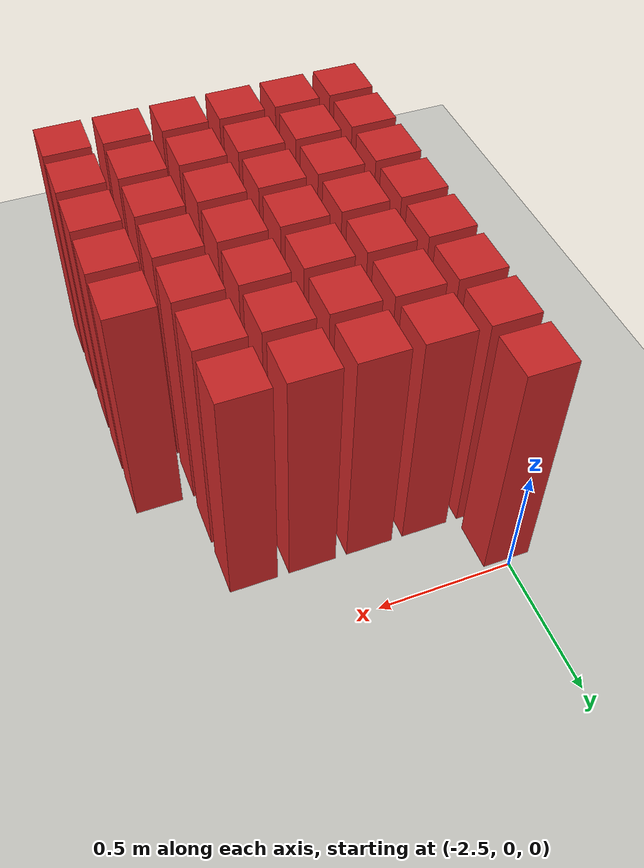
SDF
<sdf version="1.7">
 <world name="default">
  <model name="ground_plane">
   <static>1</static>
   <link name="link">
    <collision name="collision">
     <geometry><plane><normal>0 0 1</normal><size>100 100</size></plane></geometry>
     <surface>
      <contact><collide_bitmask>65535</collide_bitmask></contact>
      <friction><ode><mu>100</mu><mu2>50</mu2></ode></friction>
     </surface>
    </collision>
    <visual name="visual">
     <cast_shadows>0</cast_shadows>
     <geometry><plane><normal>0 0 1</normal><size>100 100</size></plane></geometry>
     <material>
      <script><uri>file://media/materials/scripts/gazebo.material</uri><name>Gazebo/CeilingTiled</name></script>
     </material>
    </visual>
   </link>
  </model>
  <model name="wall92">
   <link name="link">
    <pose>0 0 0.5 0 -0 0</pose>
    <inertial>
     <mass>0.5167</mass>
     <inertia>
      <ixx>0.000861167</ixx>
      <ixy>0</ixy>
      <ixz>0</ixz>
      <iyy>0.000861167</iyy>
      <iyz>0</iyz>
      <izz>0.000861167</izz>
     </inertia>
    </inertial>
    <collision name="collision">
     <geometry><box><size>0.21 0.21 1</size></box></geometry>
     <surface>
      <contact>
       <poissons_ratio>0.347</poissons_ratio>
       <elastic_modulus>8.8e+09</elastic_modulus>
       <ode><kp>100000</kp><kd>100</kd><max_vel>100</max_vel><min_depth>0.001</min_depth></ode>
      </contact>
      <friction>
       <torsional>
        <coefficient>1</coefficient>
        <use_patch_radius>0</use_patch_radius>
        <surface_radius>0.01</surface_radius>
       </torsional>
      </friction>
     </surface>
    </collision>
    <visual name="visual">
     <geometry><box><size>0.175 0.175 1</size></box></geometry>
     <material>
      <script><uri>file://media/materials/scripts/gazebo.material</uri><name>Gazebo/Red</name></script>
     </material>
    </visual>
   </link>
   <pose>-2.5 -1.63043 0 0 -0 0</pose>
  </model>
  <model name="wall93">
   <link name="link">
    <pose>0 0 0.5 0 -0 0</pose>
    <inertial>
     <mass>0.5167</mass>
     <inertia>
      <ixx>0.000861167</ixx>
      <ixy>0</ixy>
      <ixz>0</ixz>
      <iyy>0.000861167</iyy>
      <iyz>0</iyz>
      <izz>0.000861167</izz>
     </inertia>
    </inertial>
    <collision name="collision">
     <geometry><box><size>0.21 0.21 1</size></box></geometry>
     <surface>
      <contact>
       <poissons_ratio>0.347</poissons_ratio>
       <elastic_modulus>8.8e+09</elastic_modulus>
       <ode><kp>100000</kp><kd>100</kd><max_vel>100</max_vel><min_depth>0.001</min_depth></ode>
      </contact>
      <friction>
       <torsional>
        <coefficient>1</coefficient>
        <use_patch_radius>0</use_patch_radius>
        <surface_radius>0.01</surface_radius>
       </torsional>
      </friction>
     </surface>
    </collision>
    <visual name="visual">
     <geometry><box><size>0.175 0.175 1</size></box></geometry>
     <material>
      <script><uri>file://media/materials/scripts/gazebo.material</uri><name>Gazebo/Red</name></script>
     </material>
    </visual>
   </link>
   <pose>-2.28261 -1.63043 0 0 -0 0</pose>
  </model>
  <model name="wall94">
   <link name="link">
    <pose>0 0 0.5 0 -0 0</pose>
    <inertial>
     <mass>0.5167</mass>
     <inertia>
      <ixx>0.000861167</ixx>
      <ixy>0</ixy>
      <ixz>0</ixz>
      <iyy>0.000861167</iyy>
      <iyz>0</iyz>
      <izz>0.000861167</izz>
     </inertia>
    </inertial>
    <collision name="collision">
     <geometry><box><size>0.21 0.21 1</size></box></geometry>
     <surface>
      <contact>
       <poissons_ratio>0.347</poissons_ratio>
       <elastic_modulus>8.8e+09</elastic_modulus>
       <ode><kp>100000</kp><kd>100</kd><max_vel>100</max_vel><min_depth>0.001</min_depth></ode>
      </contact>
      <friction>
       <torsional>
        <coefficient>1</coefficient>
        <use_patch_radius>0</use_patch_radius>
        <surface_radius>0.01</surface_radius>
       </torsional>
      </friction>
     </surface>
    </collision>
    <visual name="visual">
     <geometry><box><size>0.175 0.175 1</size></box></geometry>
     <material>
      <script><uri>file://media/materials/scripts/gazebo.material</uri><name>Gazebo/Red</name></script>
     </material>
    </visual>
   </link>
   <pose>-2.06522 -1.63043 0 0 -0 0</pose>
  </model>
  <model name="wall95">
   <link name="link">
    <pose>0 0 0.5 0 -0 0</pose>
    <inertial>
     <mass>0.5167</mass>
     <inertia>
      <ixx>0.000861167</ixx>
      <ixy>0</ixy>
      <ixz>0</ixz>
      <iyy>0.000861167</iyy>
      <iyz>0</iyz>
      <izz>0.000861167</izz>
     </inertia>
    </inertial>
    <collision name="collision">
     <geometry><box><size>0.21 0.21 1</size></box></geometry>
     <surface>
      <contact>
       <poissons_ratio>0.347</poissons_ratio>
       <elastic_modulus>8.8e+09</elastic_modulus>
       <ode><kp>100000</kp><kd>100</kd><max_vel>100</max_vel><min_depth>0.001</min_depth></ode>
      </contact>
      <friction>
       <torsional>
        <coefficient>1</coefficient>
        <use_patch_radius>0</use_patch_radius>
        <surface_radius>0.01</surface_radius>
       </torsional>
      </friction>
     </surface>
    </collision>
    <visual name="visual">
     <geometry><box><size>0.175 0.175 1</size></box></geometry>
     <material>
      <script><uri>file://media/materials/scripts/gazebo.material</uri><name>Gazebo/Red</name></script>
     </material>
    </visual>
   </link>
   <pose>-1.84783 -1.63043 0 0 -0 0</pose>
  </model>
  <model name="wall96">
   <link name="link">
    <pose>0 0 0.5 0 -0 0</pose>
    <inertial>
     <mass>0.5167</mass>
     <inertia>
      <ixx>0.000861167</ixx>
      <ixy>0</ixy>
      <ixz>0</ixz>
      <iyy>0.000861167</iyy>
      <iyz>0</iyz>
      <izz>0.000861167</izz>
     </inertia>
    </inertial>
    <collision name="collision">
     <geometry><box><size>0.21 0.21 1</size></box></geometry>
     <surface>
      <contact>
       <poissons_ratio>0.347</poissons_ratio>
       <elastic_modulus>8.8e+09</elastic_modulus>
       <ode><kp>100000</kp><kd>100</kd><max_vel>100</max_vel><min_depth>0.001</min_depth></ode>
      </contact>
      <friction>
       <torsional>
        <coefficient>1</coefficient>
        <use_patch_radius>0</use_patch_radius>
        <surface_radius>0.01</surface_radius>
       </torsional>
      </friction>
     </surface>
    </collision>
    <visual name="visual">
     <geometry><box><size>0.175 0.175 1</size></box></geometry>
     <material>
      <script><uri>file://media/materials/scripts/gazebo.material</uri><name>Gazebo/Red</name></script>
     </material>
    </visual>
   </link>
   <pose>-1.63043 -1.63043 0 0 -0 0</pose>
  </model>
  <model name="wall97">
   <link name="link">
    <pose>0 0 0.5 0 -0 0</pose>
    <inertial>
     <mass>0.5167</mass>
     <inertia>
      <ixx>0.000861167</ixx>
      <ixy>0</ixy>
      <ixz>0</ixz>
      <iyy>0.000861167</iyy>
      <iyz>0</iyz>
      <izz>0.000861167</izz>
     </inertia>
    </inertial>
    <collision name="collision">
     <geometry><box><size>0.21 0.21 1</size></box></geometry>
     <surface>
      <contact>
       <poissons_ratio>0.347</poissons_ratio>
       <elastic_modulus>8.8e+09</elastic_modulus>
       <ode><kp>100000</kp><kd>100</kd><max_vel>100</max_vel><min_depth>0.001</min_depth></ode>
      </contact>
      <friction>
       <torsional>
        <coefficient>1</coefficient>
        <use_patch_radius>0</use_patch_radius>
        <surface_radius>0.01</surface_radius>
       </torsional>
      </friction>
     </surface>
    </collision>
    <visual name="visual">
     <geometry><box><size>0.175 0.175 1</size></box></geometry>
     <material>
      <script><uri>file://media/materials/scripts/gazebo.material</uri><name>Gazebo/Red</name></script>
     </material>
    </visual>
   </link>
   <pose>-1.41304 -1.63043 0 0 -0 0</pose>
  </model>
  <model name="wall115">
   <link name="link">
    <pose>0 0 0.5 0 -0 0</pose>
    <inertial>
     <mass>0.5167</mass>
     <inertia>
      <ixx>0.000861167</ixx>
      <ixy>0</ixy>
      <ixz>0</ixz>
      <iyy>0.000861167</iyy>
      <iyz>0</iyz>
      <izz>0.000861167</izz>
     </inertia>
    </inertial>
    <collision name="collision">
     <geometry><box><size>0.21 0.21 1</size></box></geometry>
     <surface>
      <contact>
       <poissons_ratio>0.347</poissons_ratio>
       <elastic_modulus>8.8e+09</elastic_modulus>
       <ode><kp>100000</kp><kd>100</kd><max_vel>100</max_vel><min_depth>0.001</min_depth></ode>
      </contact>
      <friction>
       <torsional>
        <coefficient>1</coefficient>
        <use_patch_radius>0</use_patch_radius>
        <surface_radius>0.01</surface_radius>
       </torsional>
      </friction>
     </surface>
    </collision>
    <visual name="visual">
     <geometry><box><size>0.175 0.175 1</size></box></geometry>
     <material>
      <script><uri>file://media/materials/scripts/gazebo.material</uri><name>Gazebo/Red</name></script>
     </material>
    </visual>
   </link>
   <pose>-2.5 -1.41304 0 0 -0 0</pose>
  </model>
  <model name="wall116">
   <link name="link">
    <pose>0 0 0.5 0 -0 0</pose>
    <inertial>
     <mass>0.5167</mass>
     <inertia>
      <ixx>0.000861167</ixx>
      <ixy>0</ixy>
      <ixz>0</ixz>
      <iyy>0.000861167</iyy>
      <iyz>0</iyz>
      <izz>0.000861167</izz>
     </inertia>
    </inertial>
    <collision name="collision">
     <geometry><box><size>0.21 0.21 1</size></box></geometry>
     <surface>
      <contact>
       <poissons_ratio>0.347</poissons_ratio>
       <elastic_modulus>8.8e+09</elastic_modulus>
       <ode><kp>100000</kp><kd>100</kd><max_vel>100</max_vel><min_depth>0.001</min_depth></ode>
      </contact>
      <friction>
       <torsional>
        <coefficient>1</coefficient>
        <use_patch_radius>0</use_patch_radius>
        <surface_radius>0.01</surface_radius>
       </torsional>
      </friction>
     </surface>
    </collision>
    <visual name="visual">
     <geometry><box><size>0.175 0.175 1</size></box></geometry>
     <material>
      <script><uri>file://media/materials/scripts/gazebo.material</uri><name>Gazebo/Red</name></script>
     </material>
    </visual>
   </link>
   <pose>-2.28261 -1.41304 0 0 -0 0</pose>
  </model>
  <model name="wall117">
   <link name="link">
    <pose>0 0 0.5 0 -0 0</pose>
    <inertial>
     <mass>0.5167</mass>
     <inertia>
      <ixx>0.000861167</ixx>
      <ixy>0</ixy>
      <ixz>0</ixz>
      <iyy>0.000861167</iyy>
      <iyz>0</iyz>
      <izz>0.000861167</izz>
     </inertia>
    </inertial>
    <collision name="collision">
     <geometry><box><size>0.21 0.21 1</size></box></geometry>
     <surface>
      <contact>
       <poissons_ratio>0.347</poissons_ratio>
       <elastic_modulus>8.8e+09</elastic_modulus>
       <ode><kp>100000</kp><kd>100</kd><max_vel>100</max_vel><min_depth>0.001</min_depth></ode>
      </contact>
      <friction>
       <torsional>
        <coefficient>1</coefficient>
        <use_patch_radius>0</use_patch_radius>
        <surface_radius>0.01</surface_radius>
       </torsional>
      </friction>
     </surface>
    </collision>
    <visual name="visual">
     <geometry><box><size>0.175 0.175 1</size></box></geometry>
     <material>
      <script><uri>file://media/materials/scripts/gazebo.material</uri><name>Gazebo/Red</name></script>
     </material>
    </visual>
   </link>
   <pose>-2.06522 -1.41304 0 0 -0 0</pose>
  </model>
  <model name="wall118">
   <link name="link">
    <pose>0 0 0.5 0 -0 0</pose>
    <inertial>
     <mass>0.5167</mass>
     <inertia>
      <ixx>0.000861167</ixx>
      <ixy>0</ixy>
      <ixz>0</ixz>
      <iyy>0.000861167</iyy>
      <iyz>0</iyz>
      <izz>0.000861167</izz>
     </inertia>
    </inertial>
    <collision name="collision">
     <geometry><box><size>0.21 0.21 1</size></box></geometry>
     <surface>
      <contact>
       <poissons_ratio>0.347</poissons_ratio>
       <elastic_modulus>8.8e+09</elastic_modulus>
       <ode><kp>100000</kp><kd>100</kd><max_vel>100</max_vel><min_depth>0.001</min_depth></ode>
      </contact>
      <friction>
       <torsional>
        <coefficient>1</coefficient>
        <use_patch_radius>0</use_patch_radius>
        <surface_radius>0.01</surface_radius>
       </torsional>
      </friction>
     </surface>
    </collision>
    <visual name="visual">
     <geometry><box><size>0.175 0.175 1</size></box></geometry>
     <material>
      <script><uri>file://media/materials/scripts/gazebo.material</uri><name>Gazebo/Red</name></script>
     </material>
    </visual>
   </link>
   <pose>-1.84783 -1.41304 0 0 -0 0</pose>
  </model>
  <model name="wall119">
   <link name="link">
    <pose>0 0 0.5 0 -0 0</pose>
    <inertial>
     <mass>0.5167</mass>
     <inertia>
      <ixx>0.000861167</ixx>
      <ixy>0</ixy>
      <ixz>0</ixz>
      <iyy>0.000861167</iyy>
      <iyz>0</iyz>
      <izz>0.000861167</izz>
     </inertia>
    </inertial>
    <collision name="collision">
     <geometry><box><size>0.21 0.21 1</size></box></geometry>
     <surface>
      <contact>
       <poissons_ratio>0.347</poissons_ratio>
       <elastic_modulus>8.8e+09</elastic_modulus>
       <ode><kp>100000</kp><kd>100</kd><max_vel>100</max_vel><min_depth>0.001</min_depth></ode>
      </contact>
      <friction>
       <torsional>
        <coefficient>1</coefficient>
        <use_patch_radius>0</use_patch_radius>
        <surface_radius>0.01</surface_radius>
       </torsional>
      </friction>
     </surface>
    </collision>
    <visual name="visual">
     <geometry><box><size>0.175 0.175 1</size></box></geometry>
     <material>
      <script><uri>file://media/materials/scripts/gazebo.material</uri><name>Gazebo/Red</name></script>
     </material>
    </visual>
   </link>
   <pose>-1.63043 -1.41304 0 0 -0 0</pose>
  </model>
  <model name="wall120">
   <link name="link">
    <pose>0 0 0.5 0 -0 0</pose>
    <inertial>
     <mass>0.5167</mass>
     <inertia>
      <ixx>0.000861167</ixx>
      <ixy>0</ixy>
      <ixz>0</ixz>
      <iyy>0.000861167</iyy>
      <iyz>0</iyz>
      <izz>0.000861167</izz>
     </inertia>
    </inertial>
    <collision name="collision">
     <geometry><box><size>0.21 0.21 1</size></box></geometry>
     <surface>
      <contact>
       <poissons_ratio>0.347</poissons_ratio>
       <elastic_modulus>8.8e+09</elastic_modulus>
       <ode><kp>100000</kp><kd>100</kd><max_vel>100</max_vel><min_depth>0.001</min_depth></ode>
      </contact>
      <friction>
       <torsional>
        <coefficient>1</coefficient>
        <use_patch_radius>0</use_patch_radius>
        <surface_radius>0.01</surface_radius>
       </torsional>
      </friction>
     </surface>
    </collision>
    <visual name="visual">
     <geometry><box><size>0.175 0.175 1</size></box></geometry>
     <material>
      <script><uri>file://media/materials/scripts/gazebo.material</uri><name>Gazebo/Red</name></script>
     </material>
    </visual>
   </link>
   <pose>-1.41304 -1.41304 0 0 -0 0</pose>
  </model>
  <model name="wall138">
   <link name="link">
    <pose>0 0 0.5 0 -0 0</pose>
    <inertial>
     <mass>0.5167</mass>
     <inertia>
      <ixx>0.000861167</ixx>
      <ixy>0</ixy>
      <ixz>0</ixz>
      <iyy>0.000861167</iyy>
      <iyz>0</iyz>
      <izz>0.000861167</izz>
     </inertia>
    </inertial>
    <collision name="collision">
     <geometry><box><size>0.21 0.21 1</size></box></geometry>
     <surface>
      <contact>
       <poissons_ratio>0.347</poissons_ratio>
       <elastic_modulus>8.8e+09</elastic_modulus>
       <ode><kp>100000</kp><kd>100</kd><max_vel>100</max_vel><min_depth>0.001</min_depth></ode>
      </contact>
      <friction>
       <torsional>
        <coefficient>1</coefficient>
        <use_patch_radius>0</use_patch_radius>
        <surface_radius>0.01</surface_radius>
       </torsional>
      </friction>
     </surface>
    </collision>
    <visual name="visual">
     <geometry><box><size>0.175 0.175 1</size></box></geometry>
     <material>
      <script><uri>file://media/materials/scripts/gazebo.material</uri><name>Gazebo/Red</name></script>
     </material>
    </visual>
   </link>
   <pose>-2.5 -1.19565 0 0 -0 0</pose>
  </model>
  <model name="wall139">
   <link name="link">
    <pose>0 0 0.5 0 -0 0</pose>
    <inertial>
     <mass>0.5167</mass>
     <inertia>
      <ixx>0.000861167</ixx>
      <ixy>0</ixy>
      <ixz>0</ixz>
      <iyy>0.000861167</iyy>
      <iyz>0</iyz>
      <izz>0.000861167</izz>
     </inertia>
    </inertial>
    <collision name="collision">
     <geometry><box><size>0.21 0.21 1</size></box></geometry>
     <surface>
      <contact>
       <poissons_ratio>0.347</poissons_ratio>
       <elastic_modulus>8.8e+09</elastic_modulus>
       <ode><kp>100000</kp><kd>100</kd><max_vel>100</max_vel><min_depth>0.001</min_depth></ode>
      </contact>
      <friction>
       <torsional>
        <coefficient>1</coefficient>
        <use_patch_radius>0</use_patch_radius>
        <surface_radius>0.01</surface_radius>
       </torsional>
      </friction>
     </surface>
    </collision>
    <visual name="visual">
     <geometry><box><size>0.175 0.175 1</size></box></geometry>
     <material>
      <script><uri>file://media/materials/scripts/gazebo.material</uri><name>Gazebo/Red</name></script>
     </material>
    </visual>
   </link>
   <pose>-2.28261 -1.19565 0 0 -0 0</pose>
  </model>
  <model name="wall140">
   <link name="link">
    <pose>0 0 0.5 0 -0 0</pose>
    <inertial>
     <mass>0.5167</mass>
     <inertia>
      <ixx>0.000861167</ixx>
      <ixy>0</ixy>
      <ixz>0</ixz>
      <iyy>0.000861167</iyy>
      <iyz>0</iyz>
      <izz>0.000861167</izz>
     </inertia>
    </inertial>
    <collision name="collision">
     <geometry><box><size>0.21 0.21 1</size></box></geometry>
     <surface>
      <contact>
       <poissons_ratio>0.347</poissons_ratio>
       <elastic_modulus>8.8e+09</elastic_modulus>
       <ode><kp>100000</kp><kd>100</kd><max_vel>100</max_vel><min_depth>0.001</min_depth></ode>
      </contact>
      <friction>
       <torsional>
        <coefficient>1</coefficient>
        <use_patch_radius>0</use_patch_radius>
        <surface_radius>0.01</surface_radius>
       </torsional>
      </friction>
     </surface>
    </collision>
    <visual name="visual">
     <geometry><box><size>0.175 0.175 1</size></box></geometry>
     <material>
      <script><uri>file://media/materials/scripts/gazebo.material</uri><name>Gazebo/Red</name></script>
     </material>
    </visual>
   </link>
   <pose>-2.06522 -1.19565 0 0 -0 0</pose>
  </model>
  <model name="wall141">
   <link name="link">
    <pose>0 0 0.5 0 -0 0</pose>
    <inertial>
     <mass>0.5167</mass>
     <inertia>
      <ixx>0.000861167</ixx>
      <ixy>0</ixy>
      <ixz>0</ixz>
      <iyy>0.000861167</iyy>
      <iyz>0</iyz>
      <izz>0.000861167</izz>
     </inertia>
    </inertial>
    <collision name="collision">
     <geometry><box><size>0.21 0.21 1</size></box></geometry>
     <surface>
      <contact>
       <poissons_ratio>0.347</poissons_ratio>
       <elastic_modulus>8.8e+09</elastic_modulus>
       <ode><kp>100000</kp><kd>100</kd><max_vel>100</max_vel><min_depth>0.001</min_depth></ode>
      </contact>
      <friction>
       <torsional>
        <coefficient>1</coefficient>
        <use_patch_radius>0</use_patch_radius>
        <surface_radius>0.01</surface_radius>
       </torsional>
      </friction>
     </surface>
    </collision>
    <visual name="visual">
     <geometry><box><size>0.175 0.175 1</size></box></geometry>
     <material>
      <script><uri>file://media/materials/scripts/gazebo.material</uri><name>Gazebo/Red</name></script>
     </material>
    </visual>
   </link>
   <pose>-1.84783 -1.19565 0 0 -0 0</pose>
  </model>
  <model name="wall142">
   <link name="link">
    <pose>0 0 0.5 0 -0 0</pose>
    <inertial>
     <mass>0.5167</mass>
     <inertia>
      <ixx>0.000861167</ixx>
      <ixy>0</ixy>
      <ixz>0</ixz>
      <iyy>0.000861167</iyy>
      <iyz>0</iyz>
      <izz>0.000861167</izz>
     </inertia>
    </inertial>
    <collision name="collision">
     <geometry><box><size>0.21 0.21 1</size></box></geometry>
     <surface>
      <contact>
       <poissons_ratio>0.347</poissons_ratio>
       <elastic_modulus>8.8e+09</elastic_modulus>
       <ode><kp>100000</kp><kd>100</kd><max_vel>100</max_vel><min_depth>0.001</min_depth></ode>
      </contact>
      <friction>
       <torsional>
        <coefficient>1</coefficient>
        <use_patch_radius>0</use_patch_radius>
        <surface_radius>0.01</surface_radius>
       </torsional>
      </friction>
     </surface>
    </collision>
    <visual name="visual">
     <geometry><box><size>0.175 0.175 1</size></box></geometry>
     <material>
      <script><uri>file://media/materials/scripts/gazebo.material</uri><name>Gazebo/Red</name></script>
     </material>
    </visual>
   </link>
   <pose>-1.63043 -1.19565 0 0 -0 0</pose>
  </model>
  <model name="wall143">
   <link name="link">
    <pose>0 0 0.5 0 -0 0</pose>
    <inertial>
     <mass>0.5167</mass>
     <inertia>
      <ixx>0.000861167</ixx>
      <ixy>0</ixy>
      <ixz>0</ixz>
      <iyy>0.000861167</iyy>
      <iyz>0</iyz>
      <izz>0.000861167</izz>
     </inertia>
    </inertial>
    <collision name="collision">
     <geometry><box><size>0.21 0.21 1</size></box></geometry>
     <surface>
      <contact>
       <poissons_ratio>0.347</poissons_ratio>
       <elastic_modulus>8.8e+09</elastic_modulus>
       <ode><kp>100000</kp><kd>100</kd><max_vel>100</max_vel><min_depth>0.001</min_depth></ode>
      </contact>
      <friction>
       <torsional>
        <coefficient>1</coefficient>
        <use_patch_radius>0</use_patch_radius>
        <surface_radius>0.01</surface_radius>
       </torsional>
      </friction>
     </surface>
    </collision>
    <visual name="visual">
     <geometry><box><size>0.175 0.175 1</size></box></geometry>
     <material>
      <script><uri>file://media/materials/scripts/gazebo.material</uri><name>Gazebo/Red</name></script>
     </material>
    </visual>
   </link>
   <pose>-1.41304 -1.19565 0 0 -0 0</pose>
  </model>
  <model name="wall161">
   <link name="link">
    <pose>0 0 0.5 0 -0 0</pose>
    <inertial>
     <mass>0.5167</mass>
     <inertia>
      <ixx>0.000861167</ixx>
      <ixy>0</ixy>
      <ixz>0</ixz>
      <iyy>0.000861167</iyy>
      <iyz>0</iyz>
      <izz>0.000861167</izz>
     </inertia>
    </inertial>
    <collision name="collision">
     <geometry><box><size>0.21 0.21 1</size></box></geometry>
     <surface>
      <contact>
       <poissons_ratio>0.347</poissons_ratio>
       <elastic_modulus>8.8e+09</elastic_modulus>
       <ode><kp>100000</kp><kd>100</kd><max_vel>100</max_vel><min_depth>0.001</min_depth></ode>
      </contact>
      <friction>
       <torsional>
        <coefficient>1</coefficient>
        <use_patch_radius>0</use_patch_radius>
        <surface_radius>0.01</surface_radius>
       </torsional>
      </friction>
     </surface>
    </collision>
    <visual name="visual">
     <geometry><box><size>0.175 0.175 1</size></box></geometry>
     <material>
      <script><uri>file://media/materials/scripts/gazebo.material</uri><name>Gazebo/Red</name></script>
     </material>
    </visual>
   </link>
   <pose>-2.5 -0.978261 0 0 -0 0</pose>
  </model>
  <model name="wall162">
   <link name="link">
    <pose>0 0 0.5 0 -0 0</pose>
    <inertial>
     <mass>0.5167</mass>
     <inertia>
      <ixx>0.000861167</ixx>
      <ixy>0</ixy>
      <ixz>0</ixz>
      <iyy>0.000861167</iyy>
      <iyz>0</iyz>
      <izz>0.000861167</izz>
     </inertia>
    </inertial>
    <collision name="collision">
     <geometry><box><size>0.21 0.21 1</size></box></geometry>
     <surface>
      <contact>
       <poissons_ratio>0.347</poissons_ratio>
       <elastic_modulus>8.8e+09</elastic_modulus>
       <ode><kp>100000</kp><kd>100</kd><max_vel>100</max_vel><min_depth>0.001</min_depth></ode>
      </contact>
      <friction>
       <torsional>
        <coefficient>1</coefficient>
        <use_patch_radius>0</use_patch_radius>
        <surface_radius>0.01</surface_radius>
       </torsional>
      </friction>
     </surface>
    </collision>
    <visual name="visual">
     <geometry><box><size>0.175 0.175 1</size></box></geometry>
     <material>
      <script><uri>file://media/materials/scripts/gazebo.material</uri><name>Gazebo/Red</name></script>
     </material>
    </visual>
   </link>
   <pose>-2.28261 -0.978261 0 0 -0 0</pose>
  </model>
  <model name="wall163">
   <link name="link">
    <pose>0 0 0.5 0 -0 0</pose>
    <inertial>
     <mass>0.5167</mass>
     <inertia>
      <ixx>0.000861167</ixx>
      <ixy>0</ixy>
      <ixz>0</ixz>
      <iyy>0.000861167</iyy>
      <iyz>0</iyz>
      <izz>0.000861167</izz>
     </inertia>
    </inertial>
    <collision name="collision">
     <geometry><box><size>0.21 0.21 1</size></box></geometry>
     <surface>
      <contact>
       <poissons_ratio>0.347</poissons_ratio>
       <elastic_modulus>8.8e+09</elastic_modulus>
       <ode><kp>100000</kp><kd>100</kd><max_vel>100</max_vel><min_depth>0.001</min_depth></ode>
      </contact>
      <friction>
       <torsional>
        <coefficient>1</coefficient>
        <use_patch_radius>0</use_patch_radius>
        <surface_radius>0.01</surface_radius>
       </torsional>
      </friction>
     </surface>
    </collision>
    <visual name="visual">
     <geometry><box><size>0.175 0.175 1</size></box></geometry>
     <material>
      <script><uri>file://media/materials/scripts/gazebo.material</uri><name>Gazebo/Red</name></script>
     </material>
    </visual>
   </link>
   <pose>-2.06522 -0.978261 0 0 -0 0</pose>
  </model>
  <model name="wall164">
   <link name="link">
    <pose>0 0 0.5 0 -0 0</pose>
    <inertial>
     <mass>0.5167</mass>
     <inertia>
      <ixx>0.000861167</ixx>
      <ixy>0</ixy>
      <ixz>0</ixz>
      <iyy>0.000861167</iyy>
      <iyz>0</iyz>
      <izz>0.000861167</izz>
     </inertia>
    </inertial>
    <collision name="collision">
     <geometry><box><size>0.21 0.21 1</size></box></geometry>
     <surface>
      <contact>
       <poissons_ratio>0.347</poissons_ratio>
       <elastic_modulus>8.8e+09</elastic_modulus>
       <ode><kp>100000</kp><kd>100</kd><max_vel>100</max_vel><min_depth>0.001</min_depth></ode>
      </contact>
      <friction>
       <torsional>
        <coefficient>1</coefficient>
        <use_patch_radius>0</use_patch_radius>
        <surface_radius>0.01</surface_radius>
       </torsional>
      </friction>
     </surface>
    </collision>
    <visual name="visual">
     <geometry><box><size>0.175 0.175 1</size></box></geometry>
     <material>
      <script><uri>file://media/materials/scripts/gazebo.material</uri><name>Gazebo/Red</name></script>
     </material>
    </visual>
   </link>
   <pose>-1.84783 -0.978261 0 0 -0 0</pose>
  </model>
  <model name="wall165">
   <link name="link">
    <pose>0 0 0.5 0 -0 0</pose>
    <inertial>
     <mass>0.5167</mass>
     <inertia>
      <ixx>0.000861167</ixx>
      <ixy>0</ixy>
      <ixz>0</ixz>
      <iyy>0.000861167</iyy>
      <iyz>0</iyz>
      <izz>0.000861167</izz>
     </inertia>
    </inertial>
    <collision name="collision">
     <geometry><box><size>0.21 0.21 1</size></box></geometry>
     <surface>
      <contact>
       <poissons_ratio>0.347</poissons_ratio>
       <elastic_modulus>8.8e+09</elastic_modulus>
       <ode><kp>100000</kp><kd>100</kd><max_vel>100</max_vel><min_depth>0.001</min_depth></ode>
      </contact>
      <friction>
       <torsional>
        <coefficient>1</coefficient>
        <use_patch_radius>0</use_patch_radius>
        <surface_radius>0.01</surface_radius>
       </torsional>
      </friction>
     </surface>
    </collision>
    <visual name="visual">
     <geometry><box><size>0.175 0.175 1</size></box></geometry>
     <material>
      <script><uri>file://media/materials/scripts/gazebo.material</uri><name>Gazebo/Red</name></script>
     </material>
    </visual>
   </link>
   <pose>-1.63043 -0.978261 0 0 -0 0</pose>
  </model>
  <model name="wall166">
   <link name="link">
    <pose>0 0 0.5 0 -0 0</pose>
    <inertial>
     <mass>0.5167</mass>
     <inertia>
      <ixx>0.000861167</ixx>
      <ixy>0</ixy>
      <ixz>0</ixz>
      <iyy>0.000861167</iyy>
      <iyz>0</iyz>
      <izz>0.000861167</izz>
     </inertia>
    </inertial>
    <collision name="collision">
     <geometry><box><size>0.21 0.21 1</size></box></geometry>
     <surface>
      <contact>
       <poissons_ratio>0.347</poissons_ratio>
       <elastic_modulus>8.8e+09</elastic_modulus>
       <ode><kp>100000</kp><kd>100</kd><max_vel>100</max_vel><min_depth>0.001</min_depth></ode>
      </contact>
      <friction>
       <torsional>
        <coefficient>1</coefficient>
        <use_patch_radius>0</use_patch_radius>
        <surface_radius>0.01</surface_radius>
       </torsional>
      </friction>
     </surface>
    </collision>
    <visual name="visual">
     <geometry><box><size>0.175 0.175 1</size></box></geometry>
     <material>
      <script><uri>file://media/materials/scripts/gazebo.material</uri><name>Gazebo/Red</name></script>
     </material>
    </visual>
   </link>
   <pose>-1.41304 -0.978261 0 0 -0 0</pose>
  </model>
  <model name="wall184">
   <link name="link">
    <pose>0 0 0.5 0 -0 0</pose>
    <inertial>
     <mass>0.5167</mass>
     <inertia>
      <ixx>0.000861167</ixx>
      <ixy>0</ixy>
      <ixz>0</ixz>
      <iyy>0.000861167</iyy>
      <iyz>0</iyz>
      <izz>0.000861167</izz>
     </inertia>
    </inertial>
    <collision name="collision">
     <geometry><box><size>0.21 0.21 1</size></box></geometry>
     <surface>
      <contact>
       <poissons_ratio>0.347</poissons_ratio>
       <elastic_modulus>8.8e+09</elastic_modulus>
       <ode><kp>100000</kp><kd>100</kd><max_vel>100</max_vel><min_depth>0.001</min_depth></ode>
      </contact>
      <friction>
       <torsional>
        <coefficient>1</coefficient>
        <use_patch_radius>0</use_patch_radius>
        <surface_radius>0.01</surface_radius>
       </torsional>
      </friction>
     </surface>
    </collision>
    <visual name="visual">
     <geometry><box><size>0.175 0.175 1</size></box></geometry>
     <material>
      <script><uri>file://media/materials/scripts/gazebo.material</uri><name>Gazebo/Red</name></script>
     </material>
    </visual>
   </link>
   <pose>-2.5 -0.76087 0 0 -0 0</pose>
  </model>
  <model name="wall185">
   <link name="link">
    <pose>0 0 0.5 0 -0 0</pose>
    <inertial>
     <mass>0.5167</mass>
     <inertia>
      <ixx>0.000861167</ixx>
      <ixy>0</ixy>
      <ixz>0</ixz>
      <iyy>0.000861167</iyy>
      <iyz>0</iyz>
      <izz>0.000861167</izz>
     </inertia>
    </inertial>
    <collision name="collision">
     <geometry><box><size>0.21 0.21 1</size></box></geometry>
     <surface>
      <contact>
       <poissons_ratio>0.347</poissons_ratio>
       <elastic_modulus>8.8e+09</elastic_modulus>
       <ode><kp>100000</kp><kd>100</kd><max_vel>100</max_vel><min_depth>0.001</min_depth></ode>
      </contact>
      <friction>
       <torsional>
        <coefficient>1</coefficient>
        <use_patch_radius>0</use_patch_radius>
        <surface_radius>0.01</surface_radius>
       </torsional>
      </friction>
     </surface>
    </collision>
    <visual name="visual">
     <geometry><box><size>0.175 0.175 1</size></box></geometry>
     <material>
      <script><uri>file://media/materials/scripts/gazebo.material</uri><name>Gazebo/Red</name></script>
     </material>
    </visual>
   </link>
   <pose>-2.28261 -0.76087 0 0 -0 0</pose>
  </model>
  <model name="wall186">
   <link name="link">
    <pose>0 0 0.5 0 -0 0</pose>
    <inertial>
     <mass>0.5167</mass>
     <inertia>
      <ixx>0.000861167</ixx>
      <ixy>0</ixy>
      <ixz>0</ixz>
      <iyy>0.000861167</iyy>
      <iyz>0</iyz>
      <izz>0.000861167</izz>
     </inertia>
    </inertial>
    <collision name="collision">
     <geometry><box><size>0.21 0.21 1</size></box></geometry>
     <surface>
      <contact>
       <poissons_ratio>0.347</poissons_ratio>
       <elastic_modulus>8.8e+09</elastic_modulus>
       <ode><kp>100000</kp><kd>100</kd><max_vel>100</max_vel><min_depth>0.001</min_depth></ode>
      </contact>
      <friction>
       <torsional>
        <coefficient>1</coefficient>
        <use_patch_radius>0</use_patch_radius>
        <surface_radius>0.01</surface_radius>
       </torsional>
      </friction>
     </surface>
    </collision>
    <visual name="visual">
     <geometry><box><size>0.175 0.175 1</size></box></geometry>
     <material>
      <script><uri>file://media/materials/scripts/gazebo.material</uri><name>Gazebo/Red</name></script>
     </material>
    </visual>
   </link>
   <pose>-2.06522 -0.76087 0 0 -0 0</pose>
  </model>
  <model name="wall187">
   <link name="link">
    <pose>0 0 0.5 0 -0 0</pose>
    <inertial>
     <mass>0.5167</mass>
     <inertia>
      <ixx>0.000861167</ixx>
      <ixy>0</ixy>
      <ixz>0</ixz>
      <iyy>0.000861167</iyy>
      <iyz>0</iyz>
      <izz>0.000861167</izz>
     </inertia>
    </inertial>
    <collision name="collision">
     <geometry><box><size>0.21 0.21 1</size></box></geometry>
     <surface>
      <contact>
       <poissons_ratio>0.347</poissons_ratio>
       <elastic_modulus>8.8e+09</elastic_modulus>
       <ode><kp>100000</kp><kd>100</kd><max_vel>100</max_vel><min_depth>0.001</min_depth></ode>
      </contact>
      <friction>
       <torsional>
        <coefficient>1</coefficient>
        <use_patch_radius>0</use_patch_radius>
        <surface_radius>0.01</surface_radius>
       </torsional>
      </friction>
     </surface>
    </collision>
    <visual name="visual">
     <geometry><box><size>0.175 0.175 1</size></box></geometry>
     <material>
      <script><uri>file://media/materials/scripts/gazebo.material</uri><name>Gazebo/Red</name></script>
     </material>
    </visual>
   </link>
   <pose>-1.84783 -0.76087 0 0 -0 0</pose>
  </model>
  <model name="wall188">
   <link name="link">
    <pose>0 0 0.5 0 -0 0</pose>
    <inertial>
     <mass>0.5167</mass>
     <inertia>
      <ixx>0.000861167</ixx>
      <ixy>0</ixy>
      <ixz>0</ixz>
      <iyy>0.000861167</iyy>
      <iyz>0</iyz>
      <izz>0.000861167</izz>
     </inertia>
    </inertial>
    <collision name="collision">
     <geometry><box><size>0.21 0.21 1</size></box></geometry>
     <surface>
      <contact>
       <poissons_ratio>0.347</poissons_ratio>
       <elastic_modulus>8.8e+09</elastic_modulus>
       <ode><kp>100000</kp><kd>100</kd><max_vel>100</max_vel><min_depth>0.001</min_depth></ode>
      </contact>
      <friction>
       <torsional>
        <coefficient>1</coefficient>
        <use_patch_radius>0</use_patch_radius>
        <surface_radius>0.01</surface_radius>
       </torsional>
      </friction>
     </surface>
    </collision>
    <visual name="visual">
     <geometry><box><size>0.175 0.175 1</size></box></geometry>
     <material>
      <script><uri>file://media/materials/scripts/gazebo.material</uri><name>Gazebo/Red</name></script>
     </material>
    </visual>
   </link>
   <pose>-1.63043 -0.76087 0 0 -0 0</pose>
  </model>
  <model name="wall189">
   <link name="link">
    <pose>0 0 0.5 0 -0 0</pose>
    <inertial>
     <mass>0.5167</mass>
     <inertia>
      <ixx>0.000861167</ixx>
      <ixy>0</ixy>
      <ixz>0</ixz>
      <iyy>0.000861167</iyy>
      <iyz>0</iyz>
      <izz>0.000861167</izz>
     </inertia>
    </inertial>
    <collision name="collision">
     <geometry><box><size>0.21 0.21 1</size></box></geometry>
     <surface>
      <contact>
       <poissons_ratio>0.347</poissons_ratio>
       <elastic_modulus>8.8e+09</elastic_modulus>
       <ode><kp>100000</kp><kd>100</kd><max_vel>100</max_vel><min_depth>0.001</min_depth></ode>
      </contact>
      <friction>
       <torsional>
        <coefficient>1</coefficient>
        <use_patch_radius>0</use_patch_radius>
        <surface_radius>0.01</surface_radius>
       </torsional>
      </friction>
     </surface>
    </collision>
    <visual name="visual">
     <geometry><box><size>0.175 0.175 1</size></box></geometry>
     <material>
      <script><uri>file://media/materials/scripts/gazebo.material</uri><name>Gazebo/Red</name></script>
     </material>
    </visual>
   </link>
   <pose>-1.41304 -0.76087 0 0 -0 0</pose>
  </model>
  <model name="wall207">
   <link name="link">
    <pose>0 0 0.5 0 -0 0</pose>
    <inertial>
     <mass>0.5167</mass>
     <inertia>
      <ixx>0.000861167</ixx>
      <ixy>0</ixy>
      <ixz>0</ixz>
      <iyy>0.000861167</iyy>
      <iyz>0</iyz>
      <izz>0.000861167</izz>
     </inertia>
    </inertial>
    <collision name="collision">
     <geometry><box><size>0.21 0.21 1</size></box></geometry>
     <surface>
      <contact>
       <poissons_ratio>0.347</poissons_ratio>
       <elastic_modulus>8.8e+09</elastic_modulus>
       <ode><kp>100000</kp><kd>100</kd><max_vel>100</max_vel><min_depth>0.001</min_depth></ode>
      </contact>
      <friction>
       <torsional>
        <coefficient>1</coefficient>
        <use_patch_radius>0</use_patch_radius>
        <surface_radius>0.01</surface_radius>
       </torsional>
      </friction>
     </surface>
    </collision>
    <visual name="visual">
     <geometry><box><size>0.175 0.175 1</size></box></geometry>
     <material>
      <script><uri>file://media/materials/scripts/gazebo.material</uri><name>Gazebo/Red</name></script>
     </material>
    </visual>
   </link>
   <pose>-2.5 -0.543478 0 0 -0 0</pose>
  </model>
  <model name="wall208">
   <link name="link">
    <pose>0 0 0.5 0 -0 0</pose>
    <inertial>
     <mass>0.5167</mass>
     <inertia>
      <ixx>0.000861167</ixx>
      <ixy>0</ixy>
      <ixz>0</ixz>
      <iyy>0.000861167</iyy>
      <iyz>0</iyz>
      <izz>0.000861167</izz>
     </inertia>
    </inertial>
    <collision name="collision">
     <geometry><box><size>0.21 0.21 1</size></box></geometry>
     <surface>
      <contact>
       <poissons_ratio>0.347</poissons_ratio>
       <elastic_modulus>8.8e+09</elastic_modulus>
       <ode><kp>100000</kp><kd>100</kd><max_vel>100</max_vel><min_depth>0.001</min_depth></ode>
      </contact>
      <friction>
       <torsional>
        <coefficient>1</coefficient>
        <use_patch_radius>0</use_patch_radius>
        <surface_radius>0.01</surface_radius>
       </torsional>
      </friction>
     </surface>
    </collision>
    <visual name="visual">
     <geometry><box><size>0.175 0.175 1</size></box></geometry>
     <material>
      <script><uri>file://media/materials/scripts/gazebo.material</uri><name>Gazebo/Red</name></script>
     </material>
    </visual>
   </link>
   <pose>-2.28261 -0.543478 0 0 -0 0</pose>
  </model>
  <model name="wall209">
   <link name="link">
    <pose>0 0 0.5 0 -0 0</pose>
    <inertial>
     <mass>0.5167</mass>
     <inertia>
      <ixx>0.000861167</ixx>
      <ixy>0</ixy>
      <ixz>0</ixz>
      <iyy>0.000861167</iyy>
      <iyz>0</iyz>
      <izz>0.000861167</izz>
     </inertia>
    </inertial>
    <collision name="collision">
     <geometry><box><size>0.21 0.21 1</size></box></geometry>
     <surface>
      <contact>
       <poissons_ratio>0.347</poissons_ratio>
       <elastic_modulus>8.8e+09</elastic_modulus>
       <ode><kp>100000</kp><kd>100</kd><max_vel>100</max_vel><min_depth>0.001</min_depth></ode>
      </contact>
      <friction>
       <torsional>
        <coefficient>1</coefficient>
        <use_patch_radius>0</use_patch_radius>
        <surface_radius>0.01</surface_radius>
       </torsional>
      </friction>
     </surface>
    </collision>
    <visual name="visual">
     <geometry><box><size>0.175 0.175 1</size></box></geometry>
     <material>
      <script><uri>file://media/materials/scripts/gazebo.material</uri><name>Gazebo/Red</name></script>
     </material>
    </visual>
   </link>
   <pose>-2.06522 -0.543478 0 0 -0 0</pose>
  </model>
  <model name="wall210">
   <link name="link">
    <pose>0 0 0.5 0 -0 0</pose>
    <inertial>
     <mass>0.5167</mass>
     <inertia>
      <ixx>0.000861167</ixx>
      <ixy>0</ixy>
      <ixz>0</ixz>
      <iyy>0.000861167</iyy>
      <iyz>0</iyz>
      <izz>0.000861167</izz>
     </inertia>
    </inertial>
    <collision name="collision">
     <geometry><box><size>0.21 0.21 1</size></box></geometry>
     <surface>
      <contact>
       <poissons_ratio>0.347</poissons_ratio>
       <elastic_modulus>8.8e+09</elastic_modulus>
       <ode><kp>100000</kp><kd>100</kd><max_vel>100</max_vel><min_depth>0.001</min_depth></ode>
      </contact>
      <friction>
       <torsional>
        <coefficient>1</coefficient>
        <use_patch_radius>0</use_patch_radius>
        <surface_radius>0.01</surface_radius>
       </torsional>
      </friction>
     </surface>
    </collision>
    <visual name="visual">
     <geometry><box><size>0.175 0.175 1</size></box></geometry>
     <material>
      <script><uri>file://media/materials/scripts/gazebo.material</uri><name>Gazebo/Red</name></script>
     </material>
    </visual>
   </link>
   <pose>-1.84783 -0.543478 0 0 -0 0</pose>
  </model>
  <model name="wall211">
   <link name="link">
    <pose>0 0 0.5 0 -0 0</pose>
    <inertial>
     <mass>0.5167</mass>
     <inertia>
      <ixx>0.000861167</ixx>
      <ixy>0</ixy>
      <ixz>0</ixz>
      <iyy>0.000861167</iyy>
      <iyz>0</iyz>
      <izz>0.000861167</izz>
     </inertia>
    </inertial>
    <collision name="collision">
     <geometry><box><size>0.21 0.21 1</size></box></geometry>
     <surface>
      <contact>
       <poissons_ratio>0.347</poissons_ratio>
       <elastic_modulus>8.8e+09</elastic_modulus>
       <ode><kp>100000</kp><kd>100</kd><max_vel>100</max_vel><min_depth>0.001</min_depth></ode>
      </contact>
      <friction>
       <torsional>
        <coefficient>1</coefficient>
        <use_patch_radius>0</use_patch_radius>
        <surface_radius>0.01</surface_radius>
       </torsional>
      </friction>
     </surface>
    </collision>
    <visual name="visual">
     <geometry><box><size>0.175 0.175 1</size></box></geometry>
     <material>
      <script><uri>file://media/materials/scripts/gazebo.material</uri><name>Gazebo/Red</name></script>
     </material>
    </visual>
   </link>
   <pose>-1.63043 -0.543478 0 0 -0 0</pose>
  </model>
  <model name="wall230">
   <link name="link">
    <pose>0 0 0.5 0 -0 0</pose>
    <inertial>
     <mass>0.5167</mass>
     <inertia>
      <ixx>0.000861167</ixx>
      <ixy>0</ixy>
      <ixz>0</ixz>
      <iyy>0.000861167</iyy>
      <iyz>0</iyz>
      <izz>0.000861167</izz>
     </inertia>
    </inertial>
    <collision name="collision">
     <geometry><box><size>0.21 0.21 1</size></box></geometry>
     <surface>
      <contact>
       <poissons_ratio>0.347</poissons_ratio>
       <elastic_modulus>8.8e+09</elastic_modulus>
       <ode><kp>100000</kp><kd>100</kd><max_vel>100</max_vel><min_depth>0.001</min_depth></ode>
      </contact>
      <friction>
       <torsional>
        <coefficient>1</coefficient>
        <use_patch_radius>0</use_patch_radius>
        <surface_radius>0.01</surface_radius>
       </torsional>
      </friction>
     </surface>
    </collision>
    <visual name="visual">
     <geometry><box><size>0.175 0.175 1</size></box></geometry>
     <material>
      <script><uri>file://media/materials/scripts/gazebo.material</uri><name>Gazebo/Red</name></script>
     </material>
    </visual>
   </link>
   <pose>-2.5 -0.326087 0 0 -0 0</pose>
  </model>
  <model name="wall231">
   <link name="link">
    <pose>0 0 0.5 0 -0 0</pose>
    <inertial>
     <mass>0.5167</mass>
     <inertia>
      <ixx>0.000861167</ixx>
      <ixy>0</ixy>
      <ixz>0</ixz>
      <iyy>0.000861167</iyy>
      <iyz>0</iyz>
      <izz>0.000861167</izz>
     </inertia>
    </inertial>
    <collision name="collision">
     <geometry><box><size>0.21 0.21 1</size></box></geometry>
     <surface>
      <contact>
       <poissons_ratio>0.347</poissons_ratio>
       <elastic_modulus>8.8e+09</elastic_modulus>
       <ode><kp>100000</kp><kd>100</kd><max_vel>100</max_vel><min_depth>0.001</min_depth></ode>
      </contact>
      <friction>
       <torsional>
        <coefficient>1</coefficient>
        <use_patch_radius>0</use_patch_radius>
        <surface_radius>0.01</surface_radius>
       </torsional>
      </friction>
     </surface>
    </collision>
    <visual name="visual">
     <geometry><box><size>0.175 0.175 1</size></box></geometry>
     <material>
      <script><uri>file://media/materials/scripts/gazebo.material</uri><name>Gazebo/Red</name></script>
     </material>
    </visual>
   </link>
   <pose>-2.28261 -0.326087 0 0 -0 0</pose>
  </model>
  <model name="wall232">
   <link name="link">
    <pose>0 0 0.5 0 -0 0</pose>
    <inertial>
     <mass>0.5167</mass>
     <inertia>
      <ixx>0.000861167</ixx>
      <ixy>0</ixy>
      <ixz>0</ixz>
      <iyy>0.000861167</iyy>
      <iyz>0</iyz>
      <izz>0.000861167</izz>
     </inertia>
    </inertial>
    <collision name="collision">
     <geometry><box><size>0.21 0.21 1</size></box></geometry>
     <surface>
      <contact>
       <poissons_ratio>0.347</poissons_ratio>
       <elastic_modulus>8.8e+09</elastic_modulus>
       <ode><kp>100000</kp><kd>100</kd><max_vel>100</max_vel><min_depth>0.001</min_depth></ode>
      </contact>
      <friction>
       <torsional>
        <coefficient>1</coefficient>
        <use_patch_radius>0</use_patch_radius>
        <surface_radius>0.01</surface_radius>
       </torsional>
      </friction>
     </surface>
    </collision>
    <visual name="visual">
     <geometry><box><size>0.175 0.175 1</size></box></geometry>
     <material>
      <script><uri>file://media/materials/scripts/gazebo.material</uri><name>Gazebo/Red</name></script>
     </material>
    </visual>
   </link>
   <pose>-2.06522 -0.326087 0 0 -0 0</pose>
  </model>
  <model name="wall233">
   <link name="link">
    <pose>0 0 0.5 0 -0 0</pose>
    <inertial>
     <mass>0.5167</mass>
     <inertia>
      <ixx>0.000861167</ixx>
      <ixy>0</ixy>
      <ixz>0</ixz>
      <iyy>0.000861167</iyy>
      <iyz>0</iyz>
      <izz>0.000861167</izz>
     </inertia>
    </inertial>
    <collision name="collision">
     <geometry><box><size>0.21 0.21 1</size></box></geometry>
     <surface>
      <contact>
       <poissons_ratio>0.347</poissons_ratio>
       <elastic_modulus>8.8e+09</elastic_modulus>
       <ode><kp>100000</kp><kd>100</kd><max_vel>100</max_vel><min_depth>0.001</min_depth></ode>
      </contact>
      <friction>
       <torsional>
        <coefficient>1</coefficient>
        <use_patch_radius>0</use_patch_radius>
        <surface_radius>0.01</surface_radius>
       </torsional>
      </friction>
     </surface>
    </collision>
    <visual name="visual">
     <geometry><box><size>0.175 0.175 1</size></box></geometry>
     <material>
      <script><uri>file://media/materials/scripts/gazebo.material</uri><name>Gazebo/Red</name></script>
     </material>
    </visual>
   </link>
   <pose>-1.84783 -0.326087 0 0 -0 0</pose>
  </model>
  <model name="wall234">
   <link name="link">
    <pose>0 0 0.5 0 -0 0</pose>
    <inertial>
     <mass>0.5167</mass>
     <inertia>
      <ixx>0.000861167</ixx>
      <ixy>0</ixy>
      <ixz>0</ixz>
      <iyy>0.000861167</iyy>
      <iyz>0</iyz>
      <izz>0.000861167</izz>
     </inertia>
    </inertial>
    <collision name="collision">
     <geometry><box><size>0.21 0.21 1</size></box></geometry>
     <surface>
      <contact>
       <poissons_ratio>0.347</poissons_ratio>
       <elastic_modulus>8.8e+09</elastic_modulus>
       <ode><kp>100000</kp><kd>100</kd><max_vel>100</max_vel><min_depth>0.001</min_depth></ode>
      </contact>
      <friction>
       <torsional>
        <coefficient>1</coefficient>
        <use_patch_radius>0</use_patch_radius>
        <surface_radius>0.01</surface_radius>
       </torsional>
      </friction>
     </surface>
    </collision>
    <visual name="visual">
     <geometry><box><size>0.175 0.175 1</size></box></geometry>
     <material>
      <script><uri>file://media/materials/scripts/gazebo.material</uri><name>Gazebo/Red</name></script>
     </material>
    </visual>
   </link>
   <pose>-1.63043 -0.326087 0 0 -0 0</pose>
  </model>
  <model name="wall253">
   <link name="link">
    <pose>0 0 0.5 0 -0 0</pose>
    <inertial>
     <mass>0.5167</mass>
     <inertia>
      <ixx>0.000861167</ixx>
      <ixy>0</ixy>
      <ixz>0</ixz>
      <iyy>0.000861167</iyy>
      <iyz>0</iyz>
      <izz>0.000861167</izz>
     </inertia>
    </inertial>
    <collision name="collision">
     <geometry><box><size>0.21 0.21 1</size></box></geometry>
     <surface>
      <contact>
       <poissons_ratio>0.347</poissons_ratio>
       <elastic_modulus>8.8e+09</elastic_modulus>
       <ode><kp>100000</kp><kd>100</kd><max_vel>100</max_vel><min_depth>0.001</min_depth></ode>
      </contact>
      <friction>
       <torsional>
        <coefficient>1</coefficient>
        <use_patch_radius>0</use_patch_radius>
        <surface_radius>0.01</surface_radius>
       </torsional>
      </friction>
     </surface>
    </collision>
    <visual name="visual">
     <geometry><box><size>0.175 0.175 1</size></box></geometry>
     <material>
      <script><uri>file://media/materials/scripts/gazebo.material</uri><name>Gazebo/Red</name></script>
     </material>
    </visual>
   </link>
   <pose>-2.5 -0.108696 0 0 -0 0</pose>
  </model>
 </world>
</sdf>
